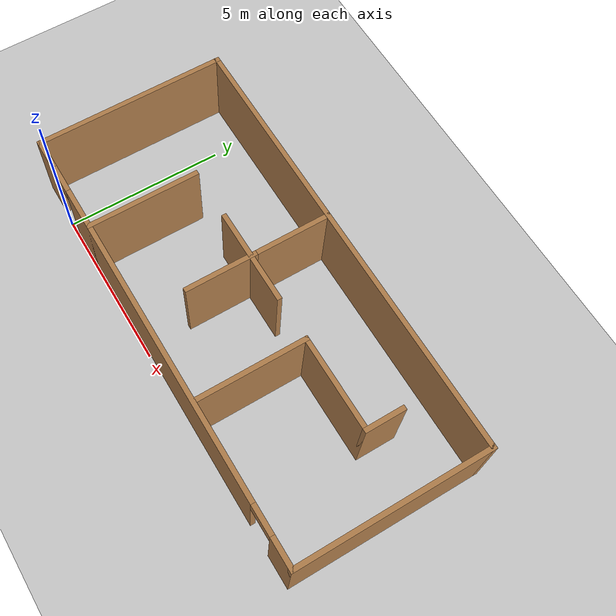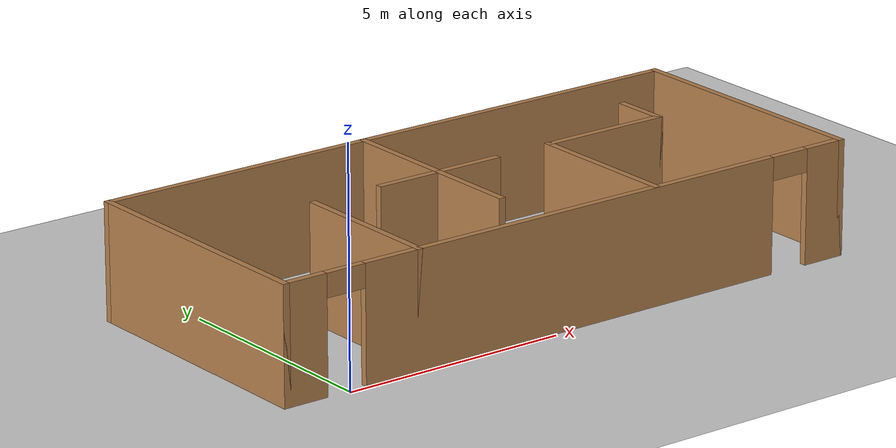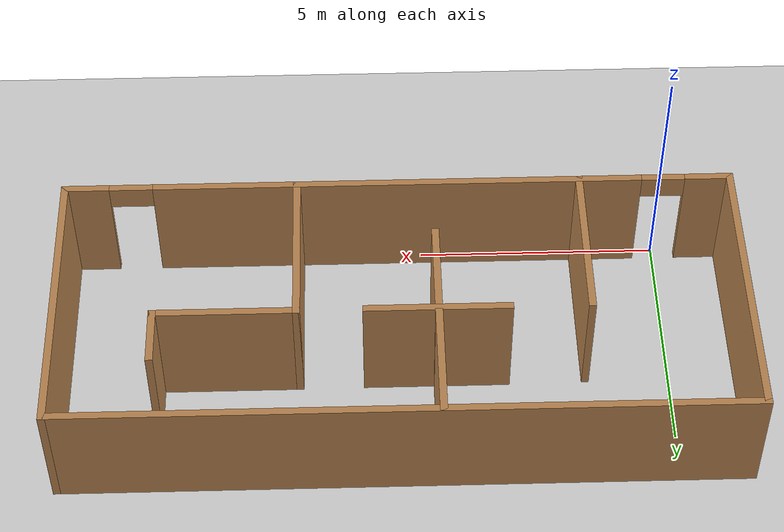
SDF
<sdf version="1.6">
 <world name="default">
  <light name="sun" type="directional">
   <pose>0 0 10 0 -0 0</pose>
   <diffuse>0.8 0.8 0.8 1</diffuse>
   <specular>0.2 0.2 0.2 1</specular>
   <attenuation>
    <range>1000</range>
    <constant>0.9</constant>
    <linear>0.01</linear>
    <quadratic>0.001</quadratic>
   </attenuation>
   <direction>-0.5 0.1 -0.9</direction>
  </light>
  <model name="ground_plane">
   <static>1</static>
   <link name="link">
    <collision name="collision">
     <geometry><plane><normal>0 0 1</normal><size>100 100</size></plane></geometry>
     <surface>
      <contact><collide_bitmask>65535</collide_bitmask></contact>
      <friction><ode><mu>100</mu><mu2>50</mu2></ode></friction>
     </surface>
    </collision>
    <visual name="visual">
     <cast_shadows>0</cast_shadows>
     <geometry><plane><normal>0 0 1</normal><size>100 100</size></plane></geometry>
     <material>
      <script><uri>file://media/materials/scripts/gazebo.material</uri><name>Gazebo/Grey</name></script>
     </material>
    </visual>
   </link>
  </model>
  <gravity>0 0 -9.8</gravity>
  <magnetic_field>6e-06 2.3e-05 -4.2e-05</magnetic_field>
  <atmosphere type="adiabatic"/>
  <physics name="default_physics" default="0" type="ode">
   <max_step_size>0.001</max_step_size>
   <real_time_factor>1</real_time_factor>
   <real_time_update_rate>1000</real_time_update_rate>
  </physics>
  <scene><ambient>0.4 0.4 0.4 1</ambient><background>0.7 0.7 0.7 1</background><shadows>1</shadows></scene>
  <audio><device>default</device></audio>
  <spherical_coordinates>
   <surface_model>EARTH_WGS84</surface_model>
   <latitude_deg>0</latitude_deg>
   <longitude_deg>0</longitude_deg>
   <elevation>0</elevation>
   <heading_deg>0</heading_deg>
  </spherical_coordinates>
  <model name="basic">
   <pose>5.49517 3.04807 0 0 -0 0</pose>
   <link name="Wall_0">
    <collision name="Wall_0_Collision">
     <geometry><box><size>6 0.15 2.5</size></box></geometry>
     <pose>0 0 1.25 0 -0 0</pose>
    </collision>
    <visual name="Wall_0_Visual">
     <pose>0 0 1.25 0 -0 0</pose>
     <geometry><box><size>6 0.15 2.5</size></box></geometry>
     <material>
      <script><uri>file://media/materials/scripts/gazebo.material</uri><name>Gazebo/Wood</name></script>
      <ambient>1 1 1 1</ambient>
     </material>
     <meta><layer>0</layer></meta>
    </visual>
    <pose>-6.925 0 0 0 -0 -1.5708</pose>
   </link>
   <link name="Wall_1">
    <pose>0 -2.925 0 0 -0 0</pose>
    <visual name="Wall_1_Visual_0">
     <pose>-6.4925 0 1.25 0 -0 0</pose>
     <geometry><box><size>1.015 0.15 2.5</size></box></geometry>
     <material>
      <script><uri>file://media/materials/scripts/gazebo.material</uri><name>Gazebo/Wood</name></script>
      <ambient>1 1 1 1</ambient>
     </material>
     <meta><layer>0</layer></meta>
    </visual>
    <collision name="Wall_1_Collision_0">
     <geometry><box><size>1.015 0.15 2.5</size></box></geometry>
     <pose>-6.4925 0 1.25 0 -0 0</pose>
    </collision>
    <visual name="Wall_1_Visual_1">
     <pose>0.01 0 1.25 0 -0 0</pose>
     <geometry><box><size>10.19 0.15 2.5</size></box></geometry>
     <material>
      <script><uri>file://media/materials/scripts/gazebo.material</uri><name>Gazebo/Wood</name></script>
      <ambient>1 1 1 1</ambient>
     </material>
     <meta><layer>0</layer></meta>
    </visual>
    <collision name="Wall_1_Collision_1">
     <geometry><box><size>10.19 0.15 2.5</size></box></geometry>
     <pose>0.01 0 1.25 0 -0 0</pose>
    </collision>
    <visual name="Wall_1_Visual_2">
     <pose>6.5025 0 1.25 0 -0 0</pose>
     <geometry><box><size>0.995 0.15 2.5</size></box></geometry>
     <material>
      <script><uri>file://media/materials/scripts/gazebo.material</uri><name>Gazebo/Wood</name></script>
      <ambient>1 1 1 1</ambient>
     </material>
     <meta><layer>0</layer></meta>
    </visual>
    <collision name="Wall_1_Collision_2">
     <geometry><box><size>0.995 0.15 2.5</size></box></geometry>
     <pose>6.5025 0 1.25 0 -0 0</pose>
    </collision>
    <visual name="Wall_1_Visual_3">
     <pose>-5.535 0 2.25 0 -0 0</pose>
     <geometry><box><size>0.9 0.15 0.5</size></box></geometry>
     <material>
      <script><uri>file://media/materials/scripts/gazebo.material</uri><name>Gazebo/Wood</name></script>
      <ambient>1 1 1 1</ambient>
     </material>
     <meta><layer>0</layer></meta>
    </visual>
    <collision name="Wall_1_Collision_3">
     <geometry><box><size>0.9 0.15 0.5</size></box></geometry>
     <pose>-5.535 0 2.25 0 -0 0</pose>
    </collision>
    <visual name="Wall_1_Visual_4">
     <pose>5.555 0 2.25 0 -0 0</pose>
     <geometry><box><size>0.9 0.15 0.5</size></box></geometry>
     <material>
      <script><uri>file://media/materials/scripts/gazebo.material</uri><name>Gazebo/Wood</name></script>
      <ambient>1 1 1 1</ambient>
     </material>
     <meta><layer>0</layer></meta>
    </visual>
    <collision name="Wall_1_Collision_4">
     <geometry><box><size>0.9 0.15 0.5</size></box></geometry>
     <pose>5.555 0 2.25 0 -0 0</pose>
    </collision>
   </link>
   <link name="Wall_10">
    <collision name="Wall_10_Collision">
     <geometry><box><size>3.5 0.15 2.5</size></box></geometry>
     <pose>0 0 1.25 0 -0 0</pose>
    </collision>
    <visual name="Wall_10_Visual">
     <pose>0 0 1.25 0 -0 0</pose>
     <geometry><box><size>3.5 0.15 2.5</size></box></geometry>
     <material>
      <script><uri>file://media/materials/scripts/gazebo.material</uri><name>Gazebo/Wood</name></script>
      <ambient>1 1 1 1</ambient>
     </material>
     <meta><layer>0</layer></meta>
    </visual>
    <pose>2.105 -1.22 0 0 -0 1.5708</pose>
   </link>
   <link name="Wall_12">
    <collision name="Wall_12_Collision">
     <geometry><box><size>3 0.15 2.5</size></box></geometry>
     <pose>0 0 1.25 0 -0 0</pose>
    </collision>
    <visual name="Wall_12_Visual">
     <pose>0 0 1.25 0 -0 0</pose>
     <geometry><box><size>3 0.15 2.5</size></box></geometry>
     <material>
      <script><uri>file://media/materials/scripts/gazebo.material</uri><name>Gazebo/Wood</name></script>
      <ambient>1 1 1 1</ambient>
     </material>
     <meta><layer>0</layer></meta>
    </visual>
    <pose>3.53 0.455 0 0 -0 0</pose>
   </link>
   <link name="Wall_13">
    <collision name="Wall_13_Collision">
     <geometry><box><size>1.25 0.15 2.5</size></box></geometry>
     <pose>0 0 1.25 0 -0 0</pose>
    </collision>
    <visual name="Wall_13_Visual">
     <pose>0 0 1.25 0 -0 0</pose>
     <geometry><box><size>1.25 0.15 2.5</size></box></geometry>
     <material>
      <script><uri>file://media/materials/scripts/gazebo.material</uri><name>Gazebo/Wood</name></script>
      <ambient>1 1 1 1</ambient>
     </material>
     <meta><layer>0</layer></meta>
    </visual>
    <pose>4.955 1.005 0 0 -0 1.5708</pose>
   </link>
   <link name="Wall_16">
    <collision name="Wall_16_Collision">
     <geometry><box><size>3 0.15 2.5</size></box></geometry>
     <pose>0 0 1.25 0 -0 0</pose>
    </collision>
    <visual name="Wall_16_Visual">
     <pose>0 0 1.25 0 -0 0</pose>
     <geometry><box><size>3 0.15 2.5</size></box></geometry>
     <material>
      <script><uri>file://media/materials/scripts/gazebo.material</uri><name>Gazebo/Wood</name></script>
      <ambient>1 1 1 1</ambient>
     </material>
     <meta><layer>0</layer></meta>
    </visual>
    <pose>-0.71 0.445 0 0 -0 0</pose>
   </link>
   <link name="Wall_18">
    <collision name="Wall_18_Collision">
     <geometry><box><size>2.25 0.15 2.5</size></box></geometry>
     <pose>0 0 1.25 0 -0 0</pose>
    </collision>
    <visual name="Wall_18_Visual">
     <pose>0 0 1.25 0 -0 0</pose>
     <geometry><box><size>2.25 0.15 2.5</size></box></geometry>
     <material>
      <script><uri>file://media/materials/scripts/gazebo.material</uri><name>Gazebo/Wood</name></script>
      <ambient>1 1 1 1</ambient>
     </material>
     <meta><layer>0</layer></meta>
    </visual>
    <pose>-0.725 -0.495 0 0 -0 -1.5708</pose>
   </link>
   <link name="Wall_2">
    <collision name="Wall_2_Collision">
     <geometry><box><size>6 0.15 2.5</size></box></geometry>
     <pose>0 0 1.25 0 -0 0</pose>
    </collision>
    <visual name="Wall_2_Visual">
     <pose>0 0 1.25 0 -0 0</pose>
     <geometry><box><size>6 0.15 2.5</size></box></geometry>
     <material>
      <script><uri>file://media/materials/scripts/gazebo.material</uri><name>Gazebo/Wood</name></script>
      <ambient>1 1 1 1</ambient>
     </material>
     <meta><layer>0</layer></meta>
    </visual>
    <pose>6.925 0 0 0 -0 1.5708</pose>
   </link>
   <link name="Wall_3">
    <collision name="Wall_3_Collision">
     <geometry><box><size>14 0.15 2.5</size></box></geometry>
     <pose>0 0 1.25 0 -0 0</pose>
    </collision>
    <visual name="Wall_3_Visual">
     <pose>0 0 1.25 0 -0 0</pose>
     <geometry><box><size>14 0.15 2.5</size></box></geometry>
     <material>
      <script><uri>file://media/materials/scripts/gazebo.material</uri><name>Gazebo/Wood</name></script>
      <ambient>1 1 1 1</ambient>
     </material>
     <meta><layer>0</layer></meta>
    </visual>
    <pose>0 2.925 0 0 -0 3.14159</pose>
   </link>
   <link name="Wall_6">
    <collision name="Wall_6_Collision">
     <geometry><box><size>3.5 0.15 2.5</size></box></geometry>
     <pose>0 0 1.25 0 -0 0</pose>
    </collision>
    <visual name="Wall_6_Visual">
     <pose>0 0 1.25 0 -0 0</pose>
     <geometry><box><size>3.5 0.15 2.5</size></box></geometry>
     <material>
      <script><uri>file://media/materials/scripts/gazebo.material</uri><name>Gazebo/Wood</name></script>
      <ambient>1 1 1 1</ambient>
     </material>
     <meta><layer>0</layer></meta>
    </visual>
    <pose>-3.775 -1.25 0 0 -0 1.5708</pose>
   </link>
   <link name="Wall_8">
    <collision name="Wall_8_Collision">
     <geometry><box><size>2.5 0.15 2.5</size></box></geometry>
     <pose>0 0 1.25 0 -0 0</pose>
    </collision>
    <visual name="Wall_8_Visual">
     <pose>0 0 1.25 0 -0 0</pose>
     <geometry><box><size>2.5 0.15 2.5</size></box></geometry>
     <material>
      <script><uri>file://media/materials/scripts/gazebo.material</uri><name>Gazebo/Wood</name></script>
      <ambient>1 1 1 1</ambient>
     </material>
     <meta><layer>0</layer></meta>
    </visual>
    <pose>-0.725 1.73 0 0 -0 -1.5708</pose>
   </link>
   <static>1</static>
  </model>
  <model name="target_box">
   <link name="link">
    <inertial>
     <mass>1</mass>
     <inertia>
      <ixx>0.166667</ixx>
      <ixy>0</ixy>
      <ixz>0</ixz>
      <iyy>0.166667</iyy>
      <iyz>0</iyz>
      <izz>0.166667</izz>
     </inertia>
    </inertial>
    <visual name="visual">
     <geometry><mesh><uri>model://target_box/meshes/cubeMesh.dae</uri><scale>0.05 0.1 0.1</scale></mesh></geometry>
     <material>
      <lighting>1</lighting>
      <script>
       <uri>model://target_box/materials/scripts</uri>
       <uri>model://target_box/materials/textures</uri>
       <name>target_box/Diffuse</name>
      </script>
      <shader type="vertex"><normal_map>__default__</normal_map></shader>
      <ambient>1 1 1 1</ambient>
      <diffuse>1 1 1 1</diffuse>
      <specular>0 0 0 1</specular>
      <emissive>0 0 0 1</emissive>
     </material>
    </visual>
    <collision name="collision">
     <geometry><box><size>0.1 0.2 0.2</size></box></geometry>
     <surface>
      <friction>
       <ode><mu>1</mu><mu2>1</mu2><fdir1>0 0 0</fdir1><slip1>0</slip1><slip2>0</slip2></ode>
       <torsional>
        <coefficient>1</coefficient>
        <patch_radius>0</patch_radius>
        <surface_radius>0</surface_radius>
        <use_patch_radius>1</use_patch_radius>
        <ode><slip>0</slip></ode>
       </torsional>
      </friction>
      <bounce><restitution_coefficient>0</restitution_coefficient><threshold>1e+06</threshold></bounce>
      <contact>
       <collide_without_contact>0</collide_without_contact>
       <collide_without_contact_bitmask>1</collide_without_contact_bitmask>
       <collide_bitmask>1</collide_bitmask>
       <ode>
        <soft_cfm>0</soft_cfm>
        <soft_erp>0.2</soft_erp>
        <kp>1e+13</kp>
        <kd>1</kd>
        <max_vel>0.01</max_vel>
        <min_depth>0.001</min_depth>
       </ode>
       <bullet>
        <split_impulse>1</split_impulse>
        <split_impulse_penetration_threshold>-0.01</split_impulse_penetration_threshold>
        <soft_cfm>0</soft_cfm>
        <soft_erp>0.2</soft_erp>
        <kp>1e+13</kp>
        <kd>1</kd>
       </bullet>
      </contact>
     </surface>
    </collision>
   </link>
   <static>1</static>
   <pose>-0.030904 2.00298 0.290949 0 -0 0</pose>
  </model>
 </world>
</sdf>
